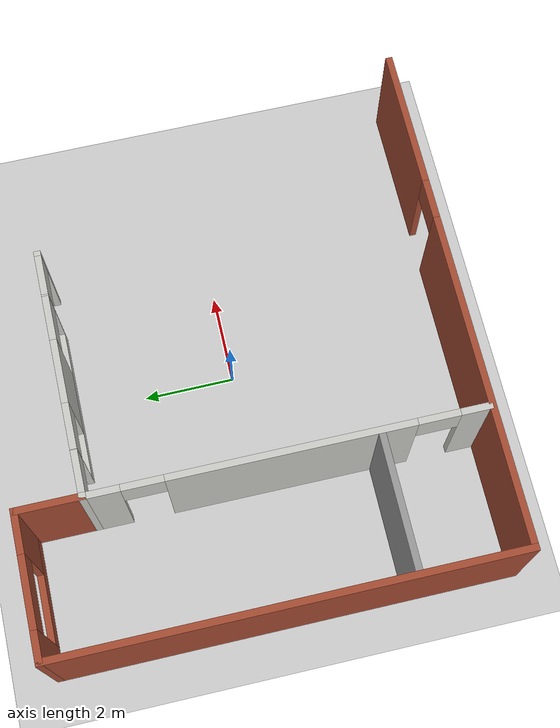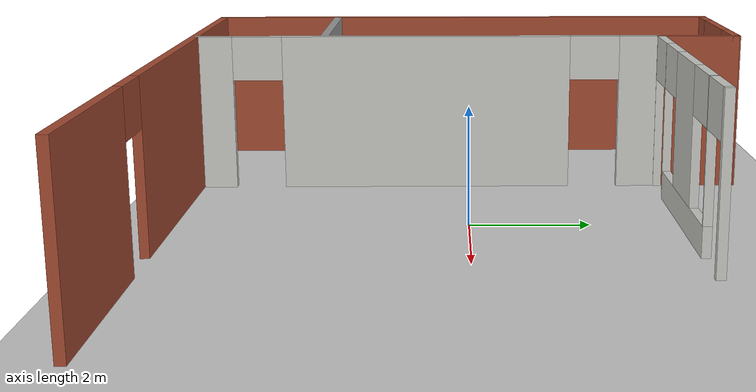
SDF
<sdf version="1.6">
 <world name="default">
  <model name="ground_plane">
   <static>1</static>
   <link name="link">
    <collision name="collision">
     <geometry><plane><normal>0 0 1</normal><size>100 100</size></plane></geometry>
     <surface>
      <contact><collide_bitmask>65535</collide_bitmask></contact>
      <friction><ode><mu>100</mu><mu2>50</mu2></ode></friction>
     </surface>
    </collision>
    <visual name="visual">
     <cast_shadows>0</cast_shadows>
     <geometry><plane><normal>0 0 1</normal><size>100 100</size></plane></geometry>
     <material>
      <script><uri>file://media/materials/scripts/gazebo.material</uri><name>Gazebo/Grey</name></script>
     </material>
    </visual>
   </link>
  </model>
  <model name="house">
   <link name="Wall_12">
    <pose>-2.65056 4.228 0 0 0 -1.5708</pose>
    <visual name="Wall_12_Visual">
     <pose>0 0 1.4 0 -0 0</pose>
     <geometry><box><size>1.5 0.15 2.8</size></box></geometry>
     <material>
      <script><uri>file://media/materials/scripts/gazebo.material</uri><name>Gazebo/Bricks</name></script>
      <ambient>1 1 1 1</ambient>
      <shader type="pixel"/>
      <diffuse>1 1 1 1</diffuse>
      <specular>0.2 0.2 0.2 1</specular>
      <emissive>0 0 0 1</emissive>
     </material>
     <meta><layer>0</layer></meta>
    </visual>
    <collision name="Wall_12_Collision">
     <pose>0 0 1.4 0 -0 0</pose>
     <geometry><box><size>1.5 0.15 2.8</size></box></geometry>
     <surface>
      <friction>
       <ode><mu>1</mu><mu2>1</mu2><fdir1>0 0 0</fdir1><slip1>0</slip1><slip2>0</slip2></ode>
       <torsional>
        <coefficient>1</coefficient>
        <patch_radius>0</patch_radius>
        <surface_radius>0</surface_radius>
        <use_patch_radius>1</use_patch_radius>
        <ode><slip>0</slip></ode>
       </torsional>
      </friction>
      <bounce><restitution_coefficient>0</restitution_coefficient><threshold>1e+06</threshold></bounce>
      <contact>
       <collide_without_contact>0</collide_without_contact>
       <collide_without_contact_bitmask>1</collide_without_contact_bitmask>
       <collide_bitmask>1</collide_bitmask>
       <ode>
        <soft_cfm>0</soft_cfm>
        <soft_erp>0.2</soft_erp>
        <kp>1e+13</kp>
        <kd>1</kd>
        <max_vel>0.01</max_vel>
        <min_depth>0</min_depth>
       </ode>
       <bullet>
        <split_impulse>1</split_impulse>
        <split_impulse_penetration_threshold>-0.01</split_impulse_penetration_threshold>
        <soft_cfm>0</soft_cfm>
        <soft_erp>0.2</soft_erp>
        <kp>1e+13</kp>
        <kd>1</kd>
       </bullet>
      </contact>
     </surface>
    </collision>
   </link>
   <link name="Wall_14">
    <pose>0.040444 3.553 0 0 -0 0</pose>
    <visual name="Wall_14_Visual_0">
     <pose>-2.6865 0 1.4 0 -0 0</pose>
     <geometry><box><size>0.159462 0.15 2.8</size></box></geometry>
     <material>
      <script><uri>file://media/materials/scripts/gazebo.material</uri><name>Gazebo/CeilingTiled</name></script>
      <ambient>1 1 1 1</ambient>
      <shader type="pixel"/>
      <diffuse>1 1 1 1</diffuse>
      <specular>0 0 0 1</specular>
      <emissive>0 0 0 1</emissive>
     </material>
     <meta><layer>0</layer></meta>
    </visual>
    <visual name="Wall_14_Visual_1">
     <pose>-1.70025 0 1.4 0 -0 0</pose>
     <geometry><box><size>0.013045 0.15 2.8</size></box></geometry>
     <material>
      <script><uri>file://media/materials/scripts/gazebo.material</uri><name>Gazebo/CeilingTiled</name></script>
      <ambient>1 1 1 1</ambient>
      <shader type="pixel"/>
      <diffuse>1 1 1 1</diffuse>
      <specular>0 0 0 1</specular>
      <emissive>0 0 0 1</emissive>
     </material>
     <meta><layer>0</layer></meta>
    </visual>
    <visual name="Wall_14_Visual_2">
     <pose>2.70996 0 1.4 0 -0 0</pose>
     <geometry><box><size>0.112546 0.15 2.8</size></box></geometry>
     <material>
      <script><uri>file://media/materials/scripts/gazebo.material</uri><name>Gazebo/CeilingTiled</name></script>
      <ambient>1 1 1 1</ambient>
      <shader type="pixel"/>
      <diffuse>1 1 1 1</diffuse>
      <specular>0 0 0 1</specular>
      <emissive>0 0 0 1</emissive>
     </material>
     <meta><layer>0</layer></meta>
    </visual>
    <visual name="Wall_14_Visual_6">
     <pose>0.010082 0 1.65 0 -0 0</pose>
     <geometry><box><size>1.40761 0.15 2.3</size></box></geometry>
     <material>
      <script><uri>file://media/materials/scripts/gazebo.material</uri><name>Gazebo/CeilingTiled</name></script>
      <ambient>1 1 1 1</ambient>
      <shader type="pixel"/>
      <diffuse>1 1 1 1</diffuse>
      <specular>0 0 0 1</specular>
      <emissive>0 0 0 1</emissive>
     </material>
     <meta><layer>0</layer></meta>
    </visual>
    <visual name="Wall_14_Visual_4">
     <pose>0.029981 0 0.25 0 -0 0</pose>
     <geometry><box><size>3.44741 0.15 0.5</size></box></geometry>
     <material>
      <script><uri>file://media/materials/scripts/gazebo.material</uri><name>Gazebo/CeilingTiled</name></script>
      <ambient>1 1 1 1</ambient>
      <shader type="pixel"/>
      <diffuse>1 1 1 1</diffuse>
      <specular>0 0 0 1</specular>
      <emissive>0 0 0 1</emissive>
     </material>
     <meta><layer>0</layer></meta>
    </visual>
    <visual name="Wall_14_Visual_7">
     <pose>1.73379 0 1.65 0 -0 0</pose>
     <geometry><box><size>0.039797 0.15 2.3</size></box></geometry>
     <material>
      <script><uri>file://media/materials/scripts/gazebo.material</uri><name>Gazebo/CeilingTiled</name></script>
      <ambient>1 1 1 1</ambient>
      <shader type="pixel"/>
      <diffuse>1 1 1 1</diffuse>
      <specular>0 0 0 1</specular>
      <emissive>0 0 0 1</emissive>
     </material>
     <meta><layer>0</layer></meta>
    </visual>
    <visual name="Wall_14_Visual_9">
     <pose>-1.19372 0 2.4 0 -0 0</pose>
     <geometry><box><size>1 0.15 0.8</size></box></geometry>
     <material>
      <script><uri>file://media/materials/scripts/gazebo.material</uri><name>Gazebo/CeilingTiled</name></script>
      <ambient>1 1 1 1</ambient>
      <shader type="pixel"/>
      <diffuse>1 1 1 1</diffuse>
      <specular>0 0 0 1</specular>
      <emissive>0 0 0 1</emissive>
     </material>
     <meta><layer>0</layer></meta>
    </visual>
    <visual name="Wall_14_Visual_10">
     <pose>-2.15677 0 2.4 0 -0 0</pose>
     <geometry><box><size>0.9 0.15 0.8</size></box></geometry>
     <material>
      <script><uri>file://media/materials/scripts/gazebo.material</uri><name>Gazebo/CeilingTiled</name></script>
      <ambient>1 1 1 1</ambient>
      <shader type="pixel"/>
      <diffuse>1 1 1 1</diffuse>
      <specular>0 0 0 1</specular>
      <emissive>0 0 0 1</emissive>
     </material>
     <meta><layer>0</layer></meta>
    </visual>
    <visual name="Wall_14_Visual_11">
     <pose>1.21389 0 2.4 0 -0 0</pose>
     <geometry><box><size>1 0.15 0.8</size></box></geometry>
     <material>
      <script><uri>file://media/materials/scripts/gazebo.material</uri><name>Gazebo/CeilingTiled</name></script>
      <ambient>1 1 1 1</ambient>
      <shader type="pixel"/>
      <diffuse>1 1 1 1</diffuse>
      <specular>0 0 0 1</specular>
      <emissive>0 0 0 1</emissive>
     </material>
     <meta><layer>0</layer></meta>
    </visual>
    <visual name="Wall_14_Visual_12">
     <pose>2.20369 0 2.4 0 -0 0</pose>
     <geometry><box><size>0.9 0.15 0.8</size></box></geometry>
     <material>
      <script><uri>file://media/materials/scripts/gazebo.material</uri><name>Gazebo/CeilingTiled</name></script>
      <ambient>1 1 1 1</ambient>
      <shader type="pixel"/>
      <diffuse>1 1 1 1</diffuse>
      <specular>0 0 0 1</specular>
      <emissive>0 0 0 1</emissive>
     </material>
     <meta><layer>0</layer></meta>
    </visual>
    <collision name="Wall_14_Collision_0">
     <pose>-2.6865 0 1.4 0 -0 0</pose>
     <geometry><box><size>0.159462 0.15 2.8</size></box></geometry>
     <surface>
      <friction>
       <ode><mu>1</mu><mu2>1</mu2><fdir1>0 0 0</fdir1><slip1>0</slip1><slip2>0</slip2></ode>
       <torsional>
        <coefficient>1</coefficient>
        <patch_radius>0</patch_radius>
        <surface_radius>0</surface_radius>
        <use_patch_radius>1</use_patch_radius>
        <ode><slip>0</slip></ode>
       </torsional>
      </friction>
      <bounce><restitution_coefficient>0</restitution_coefficient><threshold>1e+06</threshold></bounce>
      <contact>
       <collide_without_contact>0</collide_without_contact>
       <collide_without_contact_bitmask>1</collide_without_contact_bitmask>
       <collide_bitmask>1</collide_bitmask>
       <ode>
        <soft_cfm>0</soft_cfm>
        <soft_erp>0.2</soft_erp>
        <kp>1e+13</kp>
        <kd>1</kd>
        <max_vel>0.01</max_vel>
        <min_depth>0</min_depth>
       </ode>
       <bullet>
        <split_impulse>1</split_impulse>
        <split_impulse_penetration_threshold>-0.01</split_impulse_penetration_threshold>
        <soft_cfm>0</soft_cfm>
        <soft_erp>0.2</soft_erp>
        <kp>1e+13</kp>
        <kd>1</kd>
       </bullet>
      </contact>
     </surface>
    </collision>
    <collision name="Wall_14_Collision_1">
     <pose>-1.70025 0 1.4 0 -0 0</pose>
     <geometry><box><size>0.013045 0.15 2.8</size></box></geometry>
     <surface>
      <friction>
       <ode><mu>1</mu><mu2>1</mu2><fdir1>0 0 0</fdir1><slip1>0</slip1><slip2>0</slip2></ode>
       <torsional>
        <coefficient>1</coefficient>
        <patch_radius>0</patch_radius>
        <surface_radius>0</surface_radius>
        <use_patch_radius>1</use_patch_radius>
        <ode><slip>0</slip></ode>
       </torsional>
      </friction>
      <bounce><restitution_coefficient>0</restitution_coefficient><threshold>1e+06</threshold></bounce>
      <contact>
       <collide_without_contact>0</collide_without_contact>
       <collide_without_contact_bitmask>1</collide_without_contact_bitmask>
       <collide_bitmask>1</collide_bitmask>
       <ode>
        <soft_cfm>0</soft_cfm>
        <soft_erp>0.2</soft_erp>
        <kp>1e+13</kp>
        <kd>1</kd>
        <max_vel>0.01</max_vel>
        <min_depth>0</min_depth>
       </ode>
       <bullet>
        <split_impulse>1</split_impulse>
        <split_impulse_penetration_threshold>-0.01</split_impulse_penetration_threshold>
        <soft_cfm>0</soft_cfm>
        <soft_erp>0.2</soft_erp>
        <kp>1e+13</kp>
        <kd>1</kd>
       </bullet>
      </contact>
     </surface>
    </collision>
    <collision name="Wall_14_Collision_4">
     <pose>0.029981 0 0.25 0 -0 0</pose>
     <geometry><box><size>3.44741 0.15 0.5</size></box></geometry>
     <surface>
      <friction>
       <ode><mu>1</mu><mu2>1</mu2><fdir1>0 0 0</fdir1><slip1>0</slip1><slip2>0</slip2></ode>
       <torsional>
        <coefficient>1</coefficient>
        <patch_radius>0</patch_radius>
        <surface_radius>0</surface_radius>
        <use_patch_radius>1</use_patch_radius>
        <ode><slip>0</slip></ode>
       </torsional>
      </friction>
      <bounce><restitution_coefficient>0</restitution_coefficient><threshold>1e+06</threshold></bounce>
      <contact>
       <collide_without_contact>0</collide_without_contact>
       <collide_without_contact_bitmask>1</collide_without_contact_bitmask>
       <collide_bitmask>1</collide_bitmask>
       <ode>
        <soft_cfm>0</soft_cfm>
        <soft_erp>0.2</soft_erp>
        <kp>1e+13</kp>
        <kd>1</kd>
        <max_vel>0.01</max_vel>
        <min_depth>0</min_depth>
       </ode>
       <bullet>
        <split_impulse>1</split_impulse>
        <split_impulse_penetration_threshold>-0.01</split_impulse_penetration_threshold>
        <soft_cfm>0</soft_cfm>
        <soft_erp>0.2</soft_erp>
        <kp>1e+13</kp>
        <kd>1</kd>
       </bullet>
      </contact>
     </surface>
    </collision>
    <collision name="Wall_14_Collision_2">
     <pose>2.70996 0 1.4 0 -0 0</pose>
     <geometry><box><size>0.112546 0.15 2.8</size></box></geometry>
     <surface>
      <friction>
       <ode><mu>1</mu><mu2>1</mu2><fdir1>0 0 0</fdir1><slip1>0</slip1><slip2>0</slip2></ode>
       <torsional>
        <coefficient>1</coefficient>
        <patch_radius>0</patch_radius>
        <surface_radius>0</surface_radius>
        <use_patch_radius>1</use_patch_radius>
        <ode><slip>0</slip></ode>
       </torsional>
      </friction>
      <bounce><restitution_coefficient>0</restitution_coefficient><threshold>1e+06</threshold></bounce>
      <contact>
       <collide_without_contact>0</collide_without_contact>
       <collide_without_contact_bitmask>1</collide_without_contact_bitmask>
       <collide_bitmask>1</collide_bitmask>
       <ode>
        <soft_cfm>0</soft_cfm>
        <soft_erp>0.2</soft_erp>
        <kp>1e+13</kp>
        <kd>1</kd>
        <max_vel>0.01</max_vel>
        <min_depth>0</min_depth>
       </ode>
       <bullet>
        <split_impulse>1</split_impulse>
        <split_impulse_penetration_threshold>-0.01</split_impulse_penetration_threshold>
        <soft_cfm>0</soft_cfm>
        <soft_erp>0.2</soft_erp>
        <kp>1e+13</kp>
        <kd>1</kd>
       </bullet>
      </contact>
     </surface>
    </collision>
    <collision name="Wall_14_Collision_6">
     <pose>0.010082 0 1.65 0 -0 0</pose>
     <geometry><box><size>1.40761 0.15 2.3</size></box></geometry>
     <surface>
      <friction>
       <ode><mu>1</mu><mu2>1</mu2><fdir1>0 0 0</fdir1><slip1>0</slip1><slip2>0</slip2></ode>
       <torsional>
        <coefficient>1</coefficient>
        <patch_radius>0</patch_radius>
        <surface_radius>0</surface_radius>
        <use_patch_radius>1</use_patch_radius>
        <ode><slip>0</slip></ode>
       </torsional>
      </friction>
      <bounce><restitution_coefficient>0</restitution_coefficient><threshold>1e+06</threshold></bounce>
      <contact>
       <collide_without_contact>0</collide_without_contact>
       <collide_without_contact_bitmask>1</collide_without_contact_bitmask>
       <collide_bitmask>1</collide_bitmask>
       <ode>
        <soft_cfm>0</soft_cfm>
        <soft_erp>0.2</soft_erp>
        <kp>1e+13</kp>
        <kd>1</kd>
        <max_vel>0.01</max_vel>
        <min_depth>0</min_depth>
       </ode>
       <bullet>
        <split_impulse>1</split_impulse>
        <split_impulse_penetration_threshold>-0.01</split_impulse_penetration_threshold>
        <soft_cfm>0</soft_cfm>
        <soft_erp>0.2</soft_erp>
        <kp>1e+13</kp>
        <kd>1</kd>
       </bullet>
      </contact>
     </surface>
    </collision>
    <collision name="Wall_14_Collision_7">
     <pose>1.73379 0 1.65 0 -0 0</pose>
     <geometry><box><size>0.039797 0.15 2.3</size></box></geometry>
     <surface>
      <friction>
       <ode><mu>1</mu><mu2>1</mu2><fdir1>0 0 0</fdir1><slip1>0</slip1><slip2>0</slip2></ode>
       <torsional>
        <coefficient>1</coefficient>
        <patch_radius>0</patch_radius>
        <surface_radius>0</surface_radius>
        <use_patch_radius>1</use_patch_radius>
        <ode><slip>0</slip></ode>
       </torsional>
      </friction>
      <bounce><restitution_coefficient>0</restitution_coefficient><threshold>1e+06</threshold></bounce>
      <contact>
       <collide_without_contact>0</collide_without_contact>
       <collide_without_contact_bitmask>1</collide_without_contact_bitmask>
       <collide_bitmask>1</collide_bitmask>
       <ode>
        <soft_cfm>0</soft_cfm>
        <soft_erp>0.2</soft_erp>
        <kp>1e+13</kp>
        <kd>1</kd>
        <max_vel>0.01</max_vel>
        <min_depth>0</min_depth>
       </ode>
       <bullet>
        <split_impulse>1</split_impulse>
        <split_impulse_penetration_threshold>-0.01</split_impulse_penetration_threshold>
        <soft_cfm>0</soft_cfm>
        <soft_erp>0.2</soft_erp>
        <kp>1e+13</kp>
        <kd>1</kd>
       </bullet>
      </contact>
     </surface>
    </collision>
    <collision name="Wall_14_Collision_9">
     <pose>-1.19372 0 2.4 0 -0 0</pose>
     <geometry><box><size>1 0.15 0.8</size></box></geometry>
     <surface>
      <friction>
       <ode><mu>1</mu><mu2>1</mu2><fdir1>0 0 0</fdir1><slip1>0</slip1><slip2>0</slip2></ode>
       <torsional>
        <coefficient>1</coefficient>
        <patch_radius>0</patch_radius>
        <surface_radius>0</surface_radius>
        <use_patch_radius>1</use_patch_radius>
        <ode><slip>0</slip></ode>
       </torsional>
      </friction>
      <bounce><restitution_coefficient>0</restitution_coefficient><threshold>1e+06</threshold></bounce>
      <contact>
       <collide_without_contact>0</collide_without_contact>
       <collide_without_contact_bitmask>1</collide_without_contact_bitmask>
       <collide_bitmask>1</collide_bitmask>
       <ode>
        <soft_cfm>0</soft_cfm>
        <soft_erp>0.2</soft_erp>
        <kp>1e+13</kp>
        <kd>1</kd>
        <max_vel>0.01</max_vel>
        <min_depth>0</min_depth>
       </ode>
       <bullet>
        <split_impulse>1</split_impulse>
        <split_impulse_penetration_threshold>-0.01</split_impulse_penetration_threshold>
        <soft_cfm>0</soft_cfm>
        <soft_erp>0.2</soft_erp>
        <kp>1e+13</kp>
        <kd>1</kd>
       </bullet>
      </contact>
     </surface>
    </collision>
    <collision name="Wall_14_Collision_12">
     <pose>2.20369 0 2.4 0 -0 0</pose>
     <geometry><box><size>0.9 0.15 0.8</size></box></geometry>
     <surface>
      <friction>
       <ode><mu>1</mu><mu2>1</mu2><fdir1>0 0 0</fdir1><slip1>0</slip1><slip2>0</slip2></ode>
       <torsional>
        <coefficient>1</coefficient>
        <patch_radius>0</patch_radius>
        <surface_radius>0</surface_radius>
        <use_patch_radius>1</use_patch_radius>
        <ode><slip>0</slip></ode>
       </torsional>
      </friction>
      <bounce><restitution_coefficient>0</restitution_coefficient><threshold>1e+06</threshold></bounce>
      <contact>
       <collide_without_contact>0</collide_without_contact>
       <collide_without_contact_bitmask>1</collide_without_contact_bitmask>
       <collide_bitmask>1</collide_bitmask>
       <ode>
        <soft_cfm>0</soft_cfm>
        <soft_erp>0.2</soft_erp>
        <kp>1e+13</kp>
        <kd>1</kd>
        <max_vel>0.01</max_vel>
        <min_depth>0</min_depth>
       </ode>
       <bullet>
        <split_impulse>1</split_impulse>
        <split_impulse_penetration_threshold>-0.01</split_impulse_penetration_threshold>
        <soft_cfm>0</soft_cfm>
        <soft_erp>0.2</soft_erp>
        <kp>1e+13</kp>
        <kd>1</kd>
       </bullet>
      </contact>
     </surface>
    </collision>
    <collision name="Wall_14_Collision_10">
     <pose>-2.15677 0 2.4 0 -0 0</pose>
     <geometry><box><size>0.9 0.15 0.8</size></box></geometry>
     <surface>
      <friction>
       <ode><mu>1</mu><mu2>1</mu2><fdir1>0 0 0</fdir1><slip1>0</slip1><slip2>0</slip2></ode>
       <torsional>
        <coefficient>1</coefficient>
        <patch_radius>0</patch_radius>
        <surface_radius>0</surface_radius>
        <use_patch_radius>1</use_patch_radius>
        <ode><slip>0</slip></ode>
       </torsional>
      </friction>
      <bounce><restitution_coefficient>0</restitution_coefficient><threshold>1e+06</threshold></bounce>
      <contact>
       <collide_without_contact>0</collide_without_contact>
       <collide_without_contact_bitmask>1</collide_without_contact_bitmask>
       <collide_bitmask>1</collide_bitmask>
       <ode>
        <soft_cfm>0</soft_cfm>
        <soft_erp>0.2</soft_erp>
        <kp>1e+13</kp>
        <kd>1</kd>
        <max_vel>0.01</max_vel>
        <min_depth>0</min_depth>
       </ode>
       <bullet>
        <split_impulse>1</split_impulse>
        <split_impulse_penetration_threshold>-0.01</split_impulse_penetration_threshold>
        <soft_cfm>0</soft_cfm>
        <soft_erp>0.2</soft_erp>
        <kp>1e+13</kp>
        <kd>1</kd>
       </bullet>
      </contact>
     </surface>
    </collision>
    <collision name="Wall_14_Collision_11">
     <pose>1.21389 0 2.4 0 -0 0</pose>
     <geometry><box><size>1 0.15 0.8</size></box></geometry>
     <surface>
      <friction>
       <ode><mu>1</mu><mu2>1</mu2><fdir1>0 0 0</fdir1><slip1>0</slip1><slip2>0</slip2></ode>
       <torsional>
        <coefficient>1</coefficient>
        <patch_radius>0</patch_radius>
        <surface_radius>0</surface_radius>
        <use_patch_radius>1</use_patch_radius>
        <ode><slip>0</slip></ode>
       </torsional>
      </friction>
      <bounce><restitution_coefficient>0</restitution_coefficient><threshold>1e+06</threshold></bounce>
      <contact>
       <collide_without_contact>0</collide_without_contact>
       <collide_without_contact_bitmask>1</collide_without_contact_bitmask>
       <collide_bitmask>1</collide_bitmask>
       <ode>
        <soft_cfm>0</soft_cfm>
        <soft_erp>0.2</soft_erp>
        <kp>1e+13</kp>
        <kd>1</kd>
        <max_vel>0.01</max_vel>
        <min_depth>0</min_depth>
       </ode>
       <bullet>
        <split_impulse>1</split_impulse>
        <split_impulse_penetration_threshold>-0.01</split_impulse_penetration_threshold>
        <soft_cfm>0</soft_cfm>
        <soft_erp>0.2</soft_erp>
        <kp>1e+13</kp>
        <kd>1</kd>
       </bullet>
      </contact>
     </surface>
    </collision>
   </link>
   <link name="Wall_2">
    <pose>-4.15056 4.925 0 0 -0 0</pose>
    <visual name="Wall_2_Visual_0">
     <pose>-1.22601 0 1.4 0 -0 0</pose>
     <geometry><box><size>0.697976 0.15 2.8</size></box></geometry>
     <material>
      <script><uri>file://media/materials/scripts/gazebo.material</uri><name>Gazebo/Bricks</name></script>
      <ambient>1 1 1 1</ambient>
      <shader type="pixel"/>
      <diffuse>1 1 1 1</diffuse>
      <specular>0.2 0.2 0.2 1</specular>
      <emissive>0 0 0 1</emissive>
     </material>
     <meta><layer>0</layer></meta>
    </visual>
    <visual name="Wall_2_Visual_2">
     <pose>1.09899 0 1.65 0 -0 0</pose>
     <geometry><box><size>0.952024 0.15 2.3</size></box></geometry>
     <material>
      <script><uri>file://media/materials/scripts/gazebo.material</uri><name>Gazebo/Bricks</name></script>
      <ambient>1 1 1 1</ambient>
      <shader type="pixel"/>
      <diffuse>1 1 1 1</diffuse>
      <specular>0.2 0.2 0.2 1</specular>
      <emissive>0 0 0 1</emissive>
     </material>
     <meta><layer>0</layer></meta>
    </visual>
    <visual name="Wall_2_Visual_1">
     <pose>0.348988 0 0.25 0 -0 0</pose>
     <geometry><box><size>2.45202 0.15 0.5</size></box></geometry>
     <material>
      <script><uri>file://media/materials/scripts/gazebo.material</uri><name>Gazebo/Bricks</name></script>
      <ambient>1 1 1 1</ambient>
      <shader type="pixel"/>
      <diffuse>1 1 1 1</diffuse>
      <specular>0.2 0.2 0.2 1</specular>
      <emissive>0 0 0 1</emissive>
     </material>
     <meta><layer>0</layer></meta>
    </visual>
    <visual name="Wall_2_Visual_3">
     <pose>-0.127024 0 2.4 0 -0 0</pose>
     <geometry><box><size>1.5 0.15 0.8</size></box></geometry>
     <material>
      <script><uri>file://media/materials/scripts/gazebo.material</uri><name>Gazebo/Bricks</name></script>
      <ambient>1 1 1 1</ambient>
      <shader type="pixel"/>
      <diffuse>1 1 1 1</diffuse>
      <specular>0.2 0.2 0.2 1</specular>
      <emissive>0 0 0 1</emissive>
     </material>
     <meta><layer>0</layer></meta>
    </visual>
    <collision name="Wall_2_Collision_1">
     <pose>0.348988 0 0.25 0 -0 0</pose>
     <geometry><box><size>2.45202 0.15 0.5</size></box></geometry>
     <surface>
      <friction>
       <ode><mu>1</mu><mu2>1</mu2><fdir1>0 0 0</fdir1><slip1>0</slip1><slip2>0</slip2></ode>
       <torsional>
        <coefficient>1</coefficient>
        <patch_radius>0</patch_radius>
        <surface_radius>0</surface_radius>
        <use_patch_radius>1</use_patch_radius>
        <ode><slip>0</slip></ode>
       </torsional>
      </friction>
      <bounce><restitution_coefficient>0</restitution_coefficient><threshold>1e+06</threshold></bounce>
      <contact>
       <collide_without_contact>0</collide_without_contact>
       <collide_without_contact_bitmask>1</collide_without_contact_bitmask>
       <collide_bitmask>1</collide_bitmask>
       <ode>
        <soft_cfm>0</soft_cfm>
        <soft_erp>0.2</soft_erp>
        <kp>1e+13</kp>
        <kd>1</kd>
        <max_vel>0.01</max_vel>
        <min_depth>0</min_depth>
       </ode>
       <bullet>
        <split_impulse>1</split_impulse>
        <split_impulse_penetration_threshold>-0.01</split_impulse_penetration_threshold>
        <soft_cfm>0</soft_cfm>
        <soft_erp>0.2</soft_erp>
        <kp>1e+13</kp>
        <kd>1</kd>
       </bullet>
      </contact>
     </surface>
    </collision>
    <collision name="Wall_2_Collision_2">
     <pose>1.09899 0 1.65 0 -0 0</pose>
     <geometry><box><size>0.952024 0.15 2.3</size></box></geometry>
     <surface>
      <friction>
       <ode><mu>1</mu><mu2>1</mu2><fdir1>0 0 0</fdir1><slip1>0</slip1><slip2>0</slip2></ode>
       <torsional>
        <coefficient>1</coefficient>
        <patch_radius>0</patch_radius>
        <surface_radius>0</surface_radius>
        <use_patch_radius>1</use_patch_radius>
        <ode><slip>0</slip></ode>
       </torsional>
      </friction>
      <bounce><restitution_coefficient>0</restitution_coefficient><threshold>1e+06</threshold></bounce>
      <contact>
       <collide_without_contact>0</collide_without_contact>
       <collide_without_contact_bitmask>1</collide_without_contact_bitmask>
       <collide_bitmask>1</collide_bitmask>
       <ode>
        <soft_cfm>0</soft_cfm>
        <soft_erp>0.2</soft_erp>
        <kp>1e+13</kp>
        <kd>1</kd>
        <max_vel>0.01</max_vel>
        <min_depth>0</min_depth>
       </ode>
       <bullet>
        <split_impulse>1</split_impulse>
        <split_impulse_penetration_threshold>-0.01</split_impulse_penetration_threshold>
        <soft_cfm>0</soft_cfm>
        <soft_erp>0.2</soft_erp>
        <kp>1e+13</kp>
        <kd>1</kd>
       </bullet>
      </contact>
     </surface>
    </collision>
    <collision name="Wall_2_Collision_0">
     <pose>-1.22601 0 1.4 0 -0 0</pose>
     <geometry><box><size>0.697976 0.15 2.8</size></box></geometry>
     <surface>
      <friction>
       <ode><mu>1</mu><mu2>1</mu2><fdir1>0 0 0</fdir1><slip1>0</slip1><slip2>0</slip2></ode>
       <torsional>
        <coefficient>1</coefficient>
        <patch_radius>0</patch_radius>
        <surface_radius>0</surface_radius>
        <use_patch_radius>1</use_patch_radius>
        <ode><slip>0</slip></ode>
       </torsional>
      </friction>
      <bounce><restitution_coefficient>0</restitution_coefficient><threshold>1e+06</threshold></bounce>
      <contact>
       <collide_without_contact>0</collide_without_contact>
       <collide_without_contact_bitmask>1</collide_without_contact_bitmask>
       <collide_bitmask>1</collide_bitmask>
       <ode>
        <soft_cfm>0</soft_cfm>
        <soft_erp>0.2</soft_erp>
        <kp>1e+13</kp>
        <kd>1</kd>
        <max_vel>0.01</max_vel>
        <min_depth>0</min_depth>
       </ode>
       <bullet>
        <split_impulse>1</split_impulse>
        <split_impulse_penetration_threshold>-0.01</split_impulse_penetration_threshold>
        <soft_cfm>0</soft_cfm>
        <soft_erp>0.2</soft_erp>
        <kp>1e+13</kp>
        <kd>1</kd>
       </bullet>
      </contact>
     </surface>
    </collision>
    <collision name="Wall_2_Collision_3">
     <pose>-0.127024 0 2.4 0 -0 0</pose>
     <geometry><box><size>1.5 0.15 0.8</size></box></geometry>
     <surface>
      <friction>
       <ode><mu>1</mu><mu2>1</mu2><fdir1>0 0 0</fdir1><slip1>0</slip1><slip2>0</slip2></ode>
       <torsional>
        <coefficient>1</coefficient>
        <patch_radius>0</patch_radius>
        <surface_radius>0</surface_radius>
        <use_patch_radius>1</use_patch_radius>
        <ode><slip>0</slip></ode>
       </torsional>
      </friction>
      <bounce><restitution_coefficient>0</restitution_coefficient><threshold>1e+06</threshold></bounce>
      <contact>
       <collide_without_contact>0</collide_without_contact>
       <collide_without_contact_bitmask>1</collide_without_contact_bitmask>
       <collide_bitmask>1</collide_bitmask>
       <ode>
        <soft_cfm>0</soft_cfm>
        <soft_erp>0.2</soft_erp>
        <kp>1e+13</kp>
        <kd>1</kd>
        <max_vel>0.01</max_vel>
        <min_depth>0</min_depth>
       </ode>
       <bullet>
        <split_impulse>1</split_impulse>
        <split_impulse_penetration_threshold>-0.01</split_impulse_penetration_threshold>
        <soft_cfm>0</soft_cfm>
        <soft_erp>0.2</soft_erp>
        <kp>1e+13</kp>
        <kd>1</kd>
       </bullet>
      </contact>
     </surface>
    </collision>
   </link>
   <link name="Wall_43">
    <pose>-2.65056 -0.678 0 0 0 -1.5708</pose>
    <visual name="Wall_43_Visual_0">
     <pose>-3.85891 0 1.4 0 -0 0</pose>
     <geometry><box><size>0.782186 0.15 2.8</size></box></geometry>
     <material>
      <script><uri>file://media/materials/scripts/gazebo.material</uri><name>Gazebo/CeilingTiled</name></script>
      <ambient>1 1 1 1</ambient>
      <shader type="pixel"/>
      <diffuse>1 1 1 1</diffuse>
      <specular>0 0 0 1</specular>
      <emissive>0 0 0 1</emissive>
     </material>
     <meta><layer>0</layer></meta>
    </visual>
    <visual name="Wall_43_Visual_1">
     <pose>0.052093 0 1.4 0 -0 0</pose>
     <geometry><box><size>5.23981 0.15 2.8</size></box></geometry>
     <material>
      <script><uri>file://media/materials/scripts/gazebo.material</uri><name>Gazebo/CeilingTiled</name></script>
      <ambient>1 1 1 1</ambient>
      <shader type="pixel"/>
      <diffuse>1 1 1 1</diffuse>
      <specular>0 0 0 1</specular>
      <emissive>0 0 0 1</emissive>
     </material>
     <meta><layer>0</layer></meta>
    </visual>
    <visual name="Wall_43_Visual_5">
     <pose>-3.01781 0 2.4 0 -0 0</pose>
     <geometry><box><size>0.9 0.15 0.8</size></box></geometry>
     <material>
      <script><uri>file://media/materials/scripts/gazebo.material</uri><name>Gazebo/CeilingTiled</name></script>
      <ambient>1 1 1 1</ambient>
      <shader type="pixel"/>
      <diffuse>1 1 1 1</diffuse>
      <specular>0 0 0 1</specular>
      <emissive>0 0 0 1</emissive>
     </material>
     <meta><layer>0</layer></meta>
    </visual>
    <visual name="Wall_43_Visual_2">
     <pose>3.911 0 1.4 0 -0 0</pose>
     <geometry><box><size>0.678 0.15 2.8</size></box></geometry>
     <material>
      <script><uri>file://media/materials/scripts/gazebo.material</uri><name>Gazebo/CeilingTiled</name></script>
      <ambient>1 1 1 1</ambient>
      <shader type="pixel"/>
      <diffuse>1 1 1 1</diffuse>
      <specular>0 0 0 1</specular>
      <emissive>0 0 0 1</emissive>
     </material>
     <meta><layer>0</layer></meta>
    </visual>
    <visual name="Wall_43_Visual_6">
     <pose>3.122 0 2.4 0 -0 0</pose>
     <geometry><box><size>0.9 0.15 0.8</size></box></geometry>
     <material>
      <script><uri>file://media/materials/scripts/gazebo.material</uri><name>Gazebo/CeilingTiled</name></script>
      <ambient>1 1 1 1</ambient>
      <shader type="pixel"/>
      <diffuse>1 1 1 1</diffuse>
      <specular>0 0 0 1</specular>
      <emissive>0 0 0 1</emissive>
     </material>
     <meta><layer>0</layer></meta>
    </visual>
    <collision name="Wall_43_Collision_0">
     <pose>-3.85891 0 1.4 0 -0 0</pose>
     <geometry><box><size>0.782186 0.15 2.8</size></box></geometry>
     <surface>
      <friction>
       <ode><mu>1</mu><mu2>1</mu2><fdir1>0 0 0</fdir1><slip1>0</slip1><slip2>0</slip2></ode>
       <torsional>
        <coefficient>1</coefficient>
        <patch_radius>0</patch_radius>
        <surface_radius>0</surface_radius>
        <use_patch_radius>1</use_patch_radius>
        <ode><slip>0</slip></ode>
       </torsional>
      </friction>
      <bounce><restitution_coefficient>0</restitution_coefficient><threshold>1e+06</threshold></bounce>
      <contact>
       <collide_without_contact>0</collide_without_contact>
       <collide_without_contact_bitmask>1</collide_without_contact_bitmask>
       <collide_bitmask>1</collide_bitmask>
       <ode>
        <soft_cfm>0</soft_cfm>
        <soft_erp>0.2</soft_erp>
        <kp>1e+13</kp>
        <kd>1</kd>
        <max_vel>0.01</max_vel>
        <min_depth>0</min_depth>
       </ode>
       <bullet>
        <split_impulse>1</split_impulse>
        <split_impulse_penetration_threshold>-0.01</split_impulse_penetration_threshold>
        <soft_cfm>0</soft_cfm>
        <soft_erp>0.2</soft_erp>
        <kp>1e+13</kp>
        <kd>1</kd>
       </bullet>
      </contact>
     </surface>
    </collision>
    <collision name="Wall_43_Collision_1">
     <pose>0.052093 0 1.4 0 -0 0</pose>
     <geometry><box><size>5.23981 0.15 2.8</size></box></geometry>
     <surface>
      <friction>
       <ode><mu>1</mu><mu2>1</mu2><fdir1>0 0 0</fdir1><slip1>0</slip1><slip2>0</slip2></ode>
       <torsional>
        <coefficient>1</coefficient>
        <patch_radius>0</patch_radius>
        <surface_radius>0</surface_radius>
        <use_patch_radius>1</use_patch_radius>
        <ode><slip>0</slip></ode>
       </torsional>
      </friction>
      <bounce><restitution_coefficient>0</restitution_coefficient><threshold>1e+06</threshold></bounce>
      <contact>
       <collide_without_contact>0</collide_without_contact>
       <collide_without_contact_bitmask>1</collide_without_contact_bitmask>
       <collide_bitmask>1</collide_bitmask>
       <ode>
        <soft_cfm>0</soft_cfm>
        <soft_erp>0.2</soft_erp>
        <kp>1e+13</kp>
        <kd>1</kd>
        <max_vel>0.01</max_vel>
        <min_depth>0</min_depth>
       </ode>
       <bullet>
        <split_impulse>1</split_impulse>
        <split_impulse_penetration_threshold>-0.01</split_impulse_penetration_threshold>
        <soft_cfm>0</soft_cfm>
        <soft_erp>0.2</soft_erp>
        <kp>1e+13</kp>
        <kd>1</kd>
       </bullet>
      </contact>
     </surface>
    </collision>
    <collision name="Wall_43_Collision_5">
     <pose>-3.01781 0 2.4 0 -0 0</pose>
     <geometry><box><size>0.9 0.15 0.8</size></box></geometry>
     <surface>
      <friction>
       <ode><mu>1</mu><mu2>1</mu2><fdir1>0 0 0</fdir1><slip1>0</slip1><slip2>0</slip2></ode>
       <torsional>
        <coefficient>1</coefficient>
        <patch_radius>0</patch_radius>
        <surface_radius>0</surface_radius>
        <use_patch_radius>1</use_patch_radius>
        <ode><slip>0</slip></ode>
       </torsional>
      </friction>
      <bounce><restitution_coefficient>0</restitution_coefficient><threshold>1e+06</threshold></bounce>
      <contact>
       <collide_without_contact>0</collide_without_contact>
       <collide_without_contact_bitmask>1</collide_without_contact_bitmask>
       <collide_bitmask>1</collide_bitmask>
       <ode>
        <soft_cfm>0</soft_cfm>
        <soft_erp>0.2</soft_erp>
        <kp>1e+13</kp>
        <kd>1</kd>
        <max_vel>0.01</max_vel>
        <min_depth>0</min_depth>
       </ode>
       <bullet>
        <split_impulse>1</split_impulse>
        <split_impulse_penetration_threshold>-0.01</split_impulse_penetration_threshold>
        <soft_cfm>0</soft_cfm>
        <soft_erp>0.2</soft_erp>
        <kp>1e+13</kp>
        <kd>1</kd>
       </bullet>
      </contact>
     </surface>
    </collision>
    <collision name="Wall_43_Collision_6">
     <pose>3.122 0 2.4 0 -0 0</pose>
     <geometry><box><size>0.9 0.15 0.8</size></box></geometry>
     <surface>
      <friction>
       <ode><mu>1</mu><mu2>1</mu2><fdir1>0 0 0</fdir1><slip1>0</slip1><slip2>0</slip2></ode>
       <torsional>
        <coefficient>1</coefficient>
        <patch_radius>0</patch_radius>
        <surface_radius>0</surface_radius>
        <use_patch_radius>1</use_patch_radius>
        <ode><slip>0</slip></ode>
       </torsional>
      </friction>
      <bounce><restitution_coefficient>0</restitution_coefficient><threshold>1e+06</threshold></bounce>
      <contact>
       <collide_without_contact>0</collide_without_contact>
       <collide_without_contact_bitmask>1</collide_without_contact_bitmask>
       <collide_bitmask>1</collide_bitmask>
       <ode>
        <soft_cfm>0</soft_cfm>
        <soft_erp>0.2</soft_erp>
        <kp>1e+13</kp>
        <kd>1</kd>
        <max_vel>0.01</max_vel>
        <min_depth>0</min_depth>
       </ode>
       <bullet>
        <split_impulse>1</split_impulse>
        <split_impulse_penetration_threshold>-0.01</split_impulse_penetration_threshold>
        <soft_cfm>0</soft_cfm>
        <soft_erp>0.2</soft_erp>
        <kp>1e+13</kp>
        <kd>1</kd>
       </bullet>
      </contact>
     </surface>
    </collision>
    <collision name="Wall_43_Collision_2">
     <pose>3.911 0 1.4 0 -0 0</pose>
     <geometry><box><size>0.678 0.15 2.8</size></box></geometry>
     <surface>
      <friction>
       <ode><mu>1</mu><mu2>1</mu2><fdir1>0 0 0</fdir1><slip1>0</slip1><slip2>0</slip2></ode>
       <torsional>
        <coefficient>1</coefficient>
        <patch_radius>0</patch_radius>
        <surface_radius>0</surface_radius>
        <use_patch_radius>1</use_patch_radius>
        <ode><slip>0</slip></ode>
       </torsional>
      </friction>
      <bounce><restitution_coefficient>0</restitution_coefficient><threshold>1e+06</threshold></bounce>
      <contact>
       <collide_without_contact>0</collide_without_contact>
       <collide_without_contact_bitmask>1</collide_without_contact_bitmask>
       <collide_bitmask>1</collide_bitmask>
       <ode>
        <soft_cfm>0</soft_cfm>
        <soft_erp>0.2</soft_erp>
        <kp>1e+13</kp>
        <kd>1</kd>
        <max_vel>0.01</max_vel>
        <min_depth>0</min_depth>
       </ode>
       <bullet>
        <split_impulse>1</split_impulse>
        <split_impulse_penetration_threshold>-0.01</split_impulse_penetration_threshold>
        <soft_cfm>0</soft_cfm>
        <soft_erp>0.2</soft_erp>
        <kp>1e+13</kp>
        <kd>1</kd>
       </bullet>
      </contact>
     </surface>
    </collision>
   </link>
   <link name="Wall_46">
    <pose>-4.17156 -2.583 0 0 -0 0</pose>
    <visual name="Wall_46_Visual">
     <pose>0 0 1.4 0 -0 0</pose>
     <geometry><box><size>3 0.15 2.8</size></box></geometry>
     <material>
      <script><uri>file://media/materials/scripts/gazebo.material</uri><name>Gazebo/Grey</name></script>
      <ambient>1 1 1 1</ambient>
      <shader type="pixel"/>
      <diffuse>0.7 0.7 0.7 1</diffuse>
      <specular>0.01 0.01 0.01 1</specular>
      <emissive>0 0 0 1</emissive>
     </material>
     <meta><layer>0</layer></meta>
    </visual>
    <collision name="Wall_46_Collision">
     <pose>0 0 1.4 0 -0 0</pose>
     <geometry><box><size>3 0.15 2.8</size></box></geometry>
     <surface>
      <friction>
       <ode><mu>1</mu><mu2>1</mu2><fdir1>0 0 0</fdir1><slip1>0</slip1><slip2>0</slip2></ode>
       <torsional>
        <coefficient>1</coefficient>
        <patch_radius>0</patch_radius>
        <surface_radius>0</surface_radius>
        <use_patch_radius>1</use_patch_radius>
        <ode><slip>0</slip></ode>
       </torsional>
      </friction>
      <bounce><restitution_coefficient>0</restitution_coefficient><threshold>1e+06</threshold></bounce>
      <contact>
       <collide_without_contact>0</collide_without_contact>
       <collide_without_contact_bitmask>1</collide_without_contact_bitmask>
       <collide_bitmask>1</collide_bitmask>
       <ode>
        <soft_cfm>0</soft_cfm>
        <soft_erp>0.2</soft_erp>
        <kp>1e+13</kp>
        <kd>1</kd>
        <max_vel>0.01</max_vel>
        <min_depth>0</min_depth>
       </ode>
       <bullet>
        <split_impulse>1</split_impulse>
        <split_impulse_penetration_threshold>-0.01</split_impulse_penetration_threshold>
        <soft_cfm>0</soft_cfm>
        <soft_erp>0.2</soft_erp>
        <kp>1e+13</kp>
        <kd>1</kd>
       </bullet>
      </contact>
     </surface>
    </collision>
   </link>
   <link name="Wall_7">
    <pose>-5.65056 0 0 0 0 -1.5708</pose>
    <inertial>
     <mass>1</mass>
     <inertia><ixx>1</ixx><ixy>0</ixy><ixz>0</ixz><iyy>1</iyy><iyz>0</iyz><izz>1</izz></inertia>
    </inertial>
    <visual name="Wall_7_Visual">
     <pose>0 0 1.4 0 -0 0</pose>
     <geometry><box><size>10 0.15 2.8</size></box></geometry>
     <material>
      <script><uri>file://media/materials/scripts/gazebo.material</uri><name>Gazebo/Bricks</name></script>
      <ambient>1 1 1 1</ambient>
      <shader type="pixel"><normal_map>__default__</normal_map></shader>
      <diffuse>1 1 1 1</diffuse>
      <specular>0.2 0.2 0.2 1</specular>
      <emissive>0 0 0 1</emissive>
     </material>
     <meta><layer>0</layer></meta>
    </visual>
    <collision name="Wall_7_Collision">
     <pose>0 0 1.4 0 -0 0</pose>
     <geometry><box><size>10 0.15 2.8</size></box></geometry>
     <surface>
      <friction>
       <ode><mu>1</mu><mu2>1</mu2><fdir1>0 0 0</fdir1><slip1>0</slip1><slip2>0</slip2></ode>
       <torsional>
        <coefficient>1</coefficient>
        <patch_radius>0</patch_radius>
        <surface_radius>0</surface_radius>
        <use_patch_radius>1</use_patch_radius>
        <ode><slip>0</slip></ode>
       </torsional>
      </friction>
      <bounce><restitution_coefficient>0</restitution_coefficient><threshold>1e+06</threshold></bounce>
      <contact>
       <collide_without_contact>0</collide_without_contact>
       <collide_without_contact_bitmask>1</collide_without_contact_bitmask>
       <collide_bitmask>1</collide_bitmask>
       <ode>
        <soft_cfm>0</soft_cfm>
        <soft_erp>0.2</soft_erp>
        <kp>1e+13</kp>
        <kd>1</kd>
        <max_vel>0.01</max_vel>
        <min_depth>0</min_depth>
       </ode>
       <bullet>
        <split_impulse>1</split_impulse>
        <split_impulse_penetration_threshold>-0.01</split_impulse_penetration_threshold>
        <soft_cfm>0</soft_cfm>
        <soft_erp>0.2</soft_erp>
        <kp>1e+13</kp>
        <kd>1</kd>
       </bullet>
      </contact>
     </surface>
    </collision>
   </link>
   <link name="Wall_8">
    <pose>-0.000556 -4.925 0 0 -0 0</pose>
    <visual name="Wall_8_Visual_0">
     <pose>-2.02255 0 1.4 0 -0 0</pose>
     <geometry><box><size>7.4049 0.15 2.8</size></box></geometry>
     <material>
      <script><uri>file://media/materials/scripts/gazebo.material</uri><name>Gazebo/Bricks</name></script>
      <ambient>1 1 1 1</ambient>
      <shader type="pixel"/>
      <diffuse>1 1 1 1</diffuse>
      <specular>0.2 0.2 0.2 1</specular>
      <emissive>0 0 0 1</emissive>
     </material>
     <meta><layer>0</layer></meta>
    </visual>
    <visual name="Wall_8_Visual_1">
     <pose>4.15245 0 1.4 0 -0 0</pose>
     <geometry><box><size>3.1451 0.15 2.8</size></box></geometry>
     <material>
      <script><uri>file://media/materials/scripts/gazebo.material</uri><name>Gazebo/Bricks</name></script>
      <ambient>1 1 1 1</ambient>
      <shader type="pixel"/>
      <diffuse>1 1 1 1</diffuse>
      <specular>0.2 0.2 0.2 1</specular>
      <emissive>0 0 0 1</emissive>
     </material>
     <meta><layer>0</layer></meta>
    </visual>
    <visual name="Wall_8_Visual_3">
     <pose>2.1299 0 2.4 0 -0 0</pose>
     <geometry><box><size>0.9 0.15 0.8</size></box></geometry>
     <material>
      <script><uri>file://media/materials/scripts/gazebo.material</uri><name>Gazebo/Bricks</name></script>
      <ambient>1 1 1 1</ambient>
      <shader type="pixel"/>
      <diffuse>1 1 1 1</diffuse>
      <specular>0.2 0.2 0.2 1</specular>
      <emissive>0 0 0 1</emissive>
     </material>
     <meta><layer>0</layer></meta>
    </visual>
    <collision name="Wall_8_Collision_0">
     <pose>-2.02255 0 1.4 0 -0 0</pose>
     <geometry><box><size>7.4049 0.15 2.8</size></box></geometry>
     <surface>
      <friction>
       <ode><mu>1</mu><mu2>1</mu2><fdir1>0 0 0</fdir1><slip1>0</slip1><slip2>0</slip2></ode>
       <torsional>
        <coefficient>1</coefficient>
        <patch_radius>0</patch_radius>
        <surface_radius>0</surface_radius>
        <use_patch_radius>1</use_patch_radius>
        <ode><slip>0</slip></ode>
       </torsional>
      </friction>
      <bounce><restitution_coefficient>0</restitution_coefficient><threshold>1e+06</threshold></bounce>
      <contact>
       <collide_without_contact>0</collide_without_contact>
       <collide_without_contact_bitmask>1</collide_without_contact_bitmask>
       <collide_bitmask>1</collide_bitmask>
       <ode>
        <soft_cfm>0</soft_cfm>
        <soft_erp>0.2</soft_erp>
        <kp>1e+13</kp>
        <kd>1</kd>
        <max_vel>0.01</max_vel>
        <min_depth>0</min_depth>
       </ode>
       <bullet>
        <split_impulse>1</split_impulse>
        <split_impulse_penetration_threshold>-0.01</split_impulse_penetration_threshold>
        <soft_cfm>0</soft_cfm>
        <soft_erp>0.2</soft_erp>
        <kp>1e+13</kp>
        <kd>1</kd>
       </bullet>
      </contact>
     </surface>
    </collision>
    <collision name="Wall_8_Collision_1">
     <pose>4.15245 0 1.4 0 -0 0</pose>
     <geometry><box><size>3.1451 0.15 2.8</size></box></geometry>
     <surface>
      <friction>
       <ode><mu>1</mu><mu2>1</mu2><fdir1>0 0 0</fdir1><slip1>0</slip1><slip2>0</slip2></ode>
       <torsional>
        <coefficient>1</coefficient>
        <patch_radius>0</patch_radius>
        <surface_radius>0</surface_radius>
        <use_patch_radius>1</use_patch_radius>
        <ode><slip>0</slip></ode>
       </torsional>
      </friction>
      <bounce><restitution_coefficient>0</restitution_coefficient><threshold>1e+06</threshold></bounce>
      <contact>
       <collide_without_contact>0</collide_without_contact>
       <collide_without_contact_bitmask>1</collide_without_contact_bitmask>
       <collide_bitmask>1</collide_bitmask>
       <ode>
        <soft_cfm>0</soft_cfm>
        <soft_erp>0.2</soft_erp>
        <kp>1e+13</kp>
        <kd>1</kd>
        <max_vel>0.01</max_vel>
        <min_depth>0</min_depth>
       </ode>
       <bullet>
        <split_impulse>1</split_impulse>
        <split_impulse_penetration_threshold>-0.01</split_impulse_penetration_threshold>
        <soft_cfm>0</soft_cfm>
        <soft_erp>0.2</soft_erp>
        <kp>1e+13</kp>
        <kd>1</kd>
       </bullet>
      </contact>
     </surface>
    </collision>
    <collision name="Wall_8_Collision_3">
     <pose>2.1299 0 2.4 0 -0 0</pose>
     <geometry><box><size>0.9 0.15 0.8</size></box></geometry>
     <surface>
      <friction>
       <ode><mu>1</mu><mu2>1</mu2><fdir1>0 0 0</fdir1><slip1>0</slip1><slip2>0</slip2></ode>
       <torsional>
        <coefficient>1</coefficient>
        <patch_radius>0</patch_radius>
        <surface_radius>0</surface_radius>
        <use_patch_radius>1</use_patch_radius>
        <ode><slip>0</slip></ode>
       </torsional>
      </friction>
      <bounce><restitution_coefficient>0</restitution_coefficient><threshold>1e+06</threshold></bounce>
      <contact>
       <collide_without_contact>0</collide_without_contact>
       <collide_without_contact_bitmask>1</collide_without_contact_bitmask>
       <collide_bitmask>1</collide_bitmask>
       <ode>
        <soft_cfm>0</soft_cfm>
        <soft_erp>0.2</soft_erp>
        <kp>1e+13</kp>
        <kd>1</kd>
        <max_vel>0.01</max_vel>
        <min_depth>0</min_depth>
       </ode>
       <bullet>
        <split_impulse>1</split_impulse>
        <split_impulse_penetration_threshold>-0.01</split_impulse_penetration_threshold>
        <soft_cfm>0</soft_cfm>
        <soft_erp>0.2</soft_erp>
        <kp>1e+13</kp>
        <kd>1</kd>
       </bullet>
      </contact>
     </surface>
    </collision>
   </link>
   <static>1</static>
  </model>
 </world>
</sdf>
